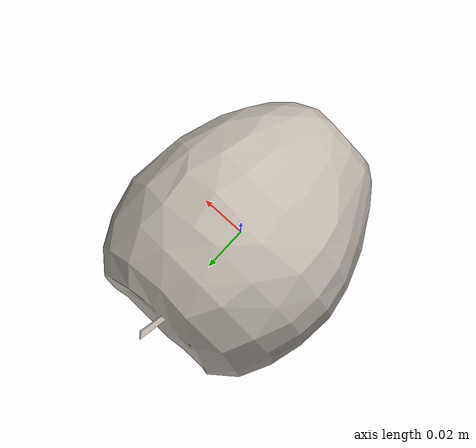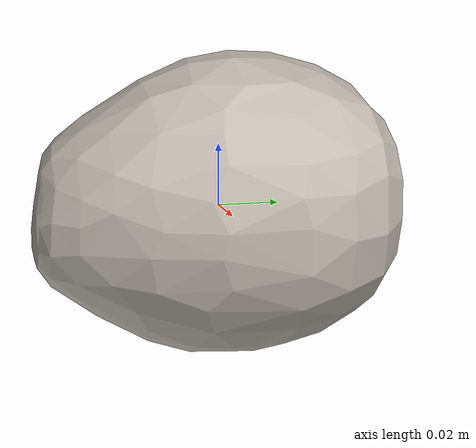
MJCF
<mujoco model="Apple_28">
  <compiler autolimits="true" boundmass="0.01" angle="radian"/>
  <default>
    <default class="/">
      <default class="__VISUAL_MJT__">
        <geom contype="0" conaffinity="0" group="0"/>
      </default>
      <default class="__STRUCTURAL_MJT__">
        <geom contype="8" conaffinity="15" group="4" friction="0.90000000000000002 0.90000000000000002 0.001" solref="0.025000000000000001 1" solimp="0.998 0.998 0.001"/>
      </default>
      <default class="__DYNAMIC_MJT__">
        <geom contype="1" conaffinity="15" group="4" friction="0.90000000000000002 0.90000000000000002 0.001" solref="0.025000000000000001 1" solimp="0.998 0.998 0.001"/>
      </default>
    </default>
  </default>
  <asset>
    <texture name="Apple2_Mat1" type="2d" file="Apple2_AlbedoTransparency1.png"/>
    <material name="material_Apple2_Mat1" class="/" texture="Apple2_Mat1" specular="0.5" shininess="0.5" rgba="1 1 1 1"/>
    <mesh name="Apple_28_apple_b13" class="/" file="Apple_28_apple_b13/Apple_28_apple_b13.obj" scale="1 1 1"/>
  </asset>
  <worldbody>
    <body name="Apple_28">
      <joint name="Apple_28_free" class="/" type="free" pos="0 0 0" axis="0 0 1" stiffness="0" range="0 0" armature="0" damping="0.10000000000000001" frictionloss="0"/>
      <body name="Apple_28_apple_b13" pos="-0.00115 0.0027899999999999999 0" quat="1 0 0 0">
        <geom name="Apple_28_apple_b13" class="__VISUAL_MJT__" type="mesh" material="material_Apple2_Mat1" shellinertia="false" mesh="Apple_28_apple_b13"/>
        <geom name="Apple_28_PrimitiveCollider_0" class="__DYNAMIC_MJT__" type="capsule" size="0.050360988825559616 0.012564647942781448" rgba="0 1 0 1" pos="-0.0011522062122821808 -0.0027900040149688721 0" quat="0.70710678118654757 0.70710678118654746 0 0"/>
      </body>
    </body>
  </worldbody>
</mujoco>
